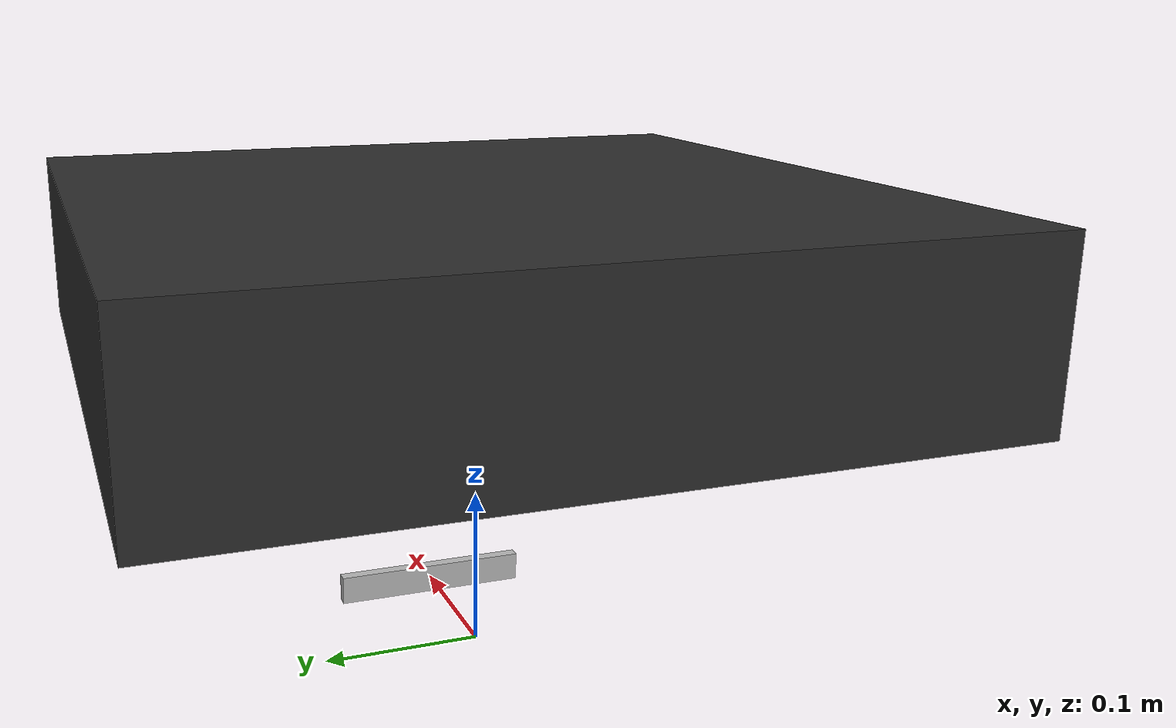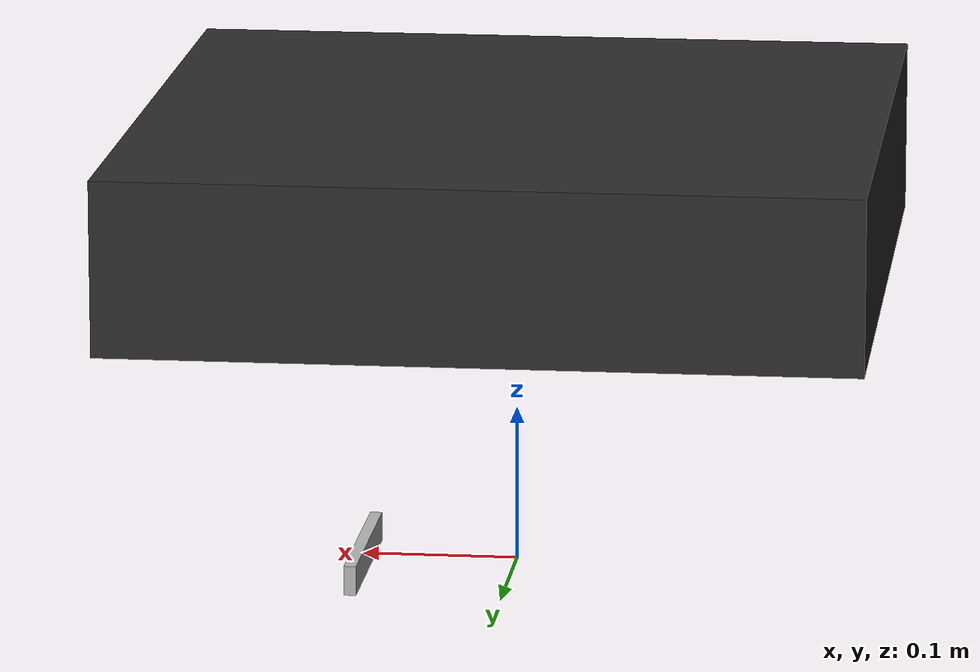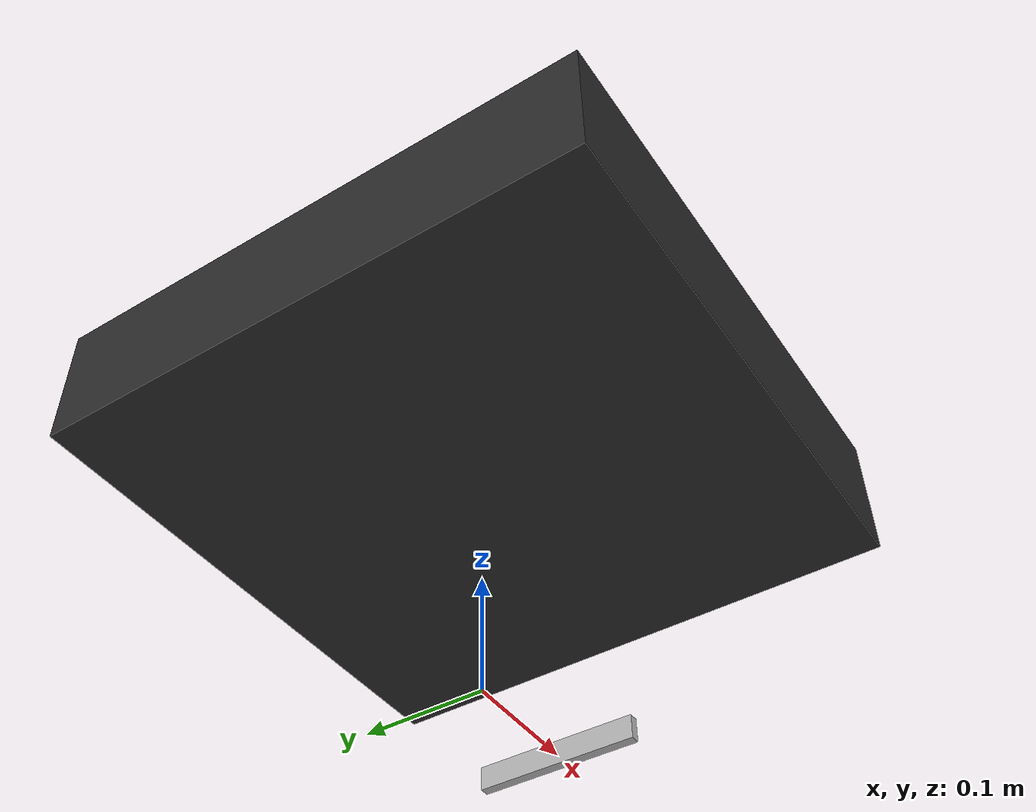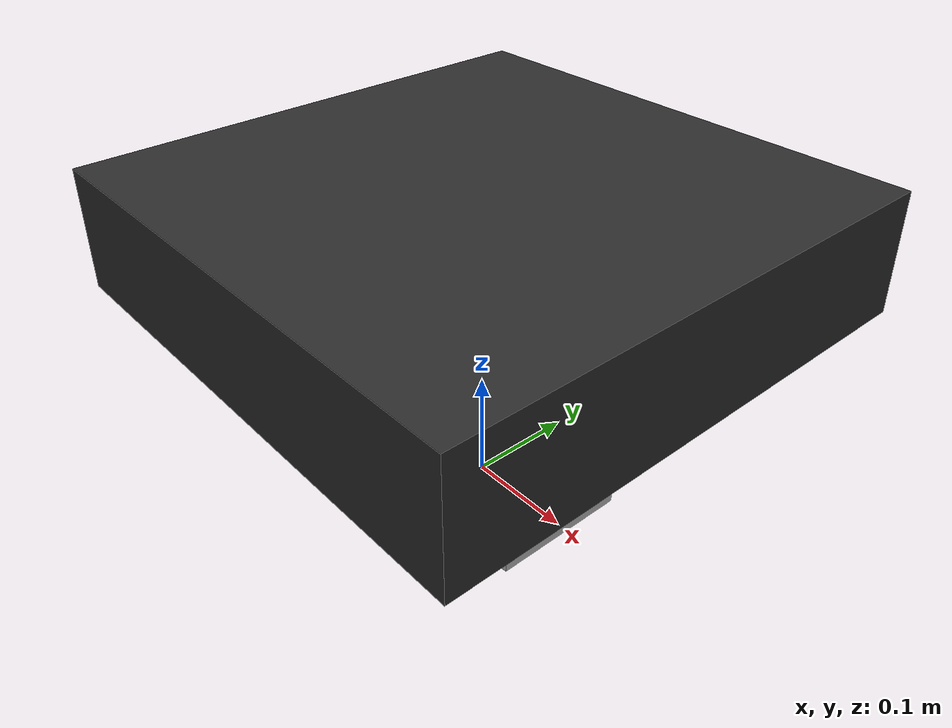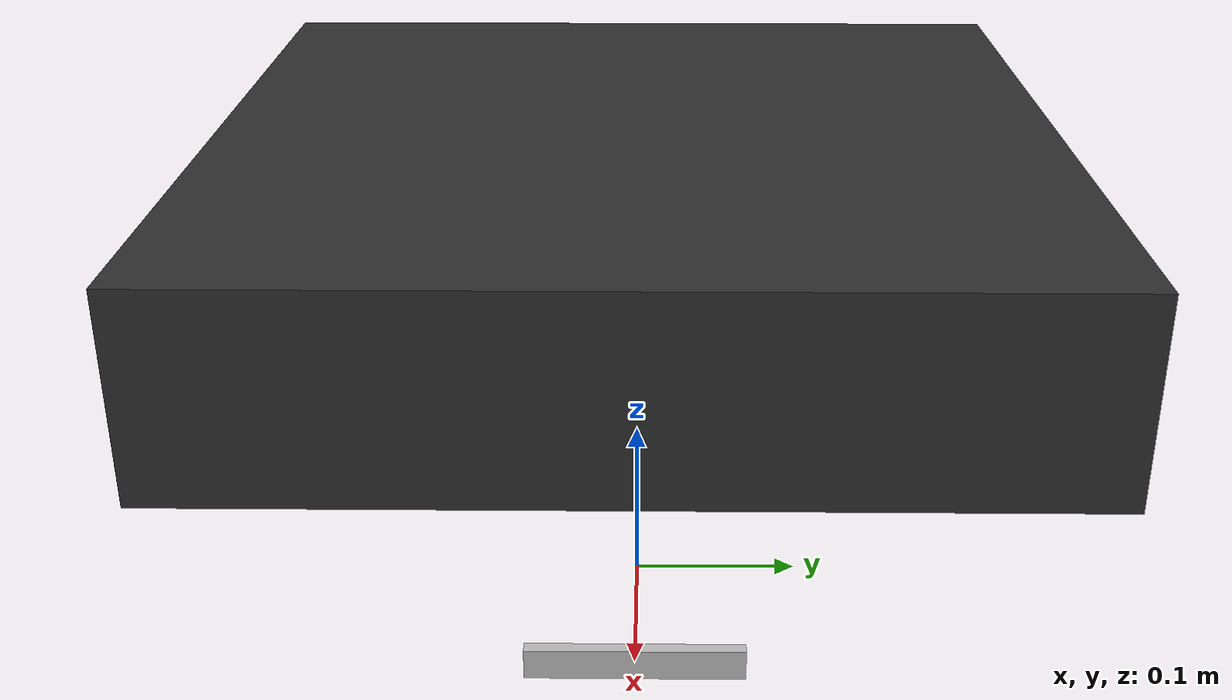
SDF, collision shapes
<?xml version="1.0" ?>
<sdf version="1.5">
  <model name='px4vision_realsense'>
    <include>
      <uri>model://px4vision</uri>
    </include>

    <include>
      <uri>model://realsense_camera</uri>
      <pose>0.1 0 0 0 0 0</pose>
    </include>
    <joint name="camera_joint" type="revolute">
      <child>realsense_camera::link</child>
      <parent>px4vision::base_link</parent>
      <axis>
        <xyz>0 0 1</xyz>
        <limit>
          <upper>0</upper>
          <lower>0</lower>
        </limit>
      </axis>
    </joint>

  </model>
</sdf>

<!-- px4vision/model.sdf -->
<sdf version='1.9'>
  <model name='px4vision'>
    <pose>0 0 .24 0 0 0</pose>
    <self_collide>false</self_collide>
    <static>false</static>
    <link name='base_link'>
      <pose>0 0 0 0 0 0</pose>
      <inertial>
        <pose>0 0 0 0 0 0</pose>
        <mass>1.5</mass>
        <inertia>
          <ixx>0.029125</ixx>
          <ixy>0</ixy>
          <ixz>0</ixz>
          <iyy>0.029125</iyy>
          <iyz>0</iyz>
          <izz>0.055225</izz>
        </inertia>
      </inertial>
      <gravity>1</gravity>
      <velocity_decay/>
      <collision name='base_link_inertia_collision'>
        <pose>0 0 0 0 0 0</pose>
        <geometry>
          <box>
            <size>0.47 0.47 0.11</size>
          </box>
        </geometry>
        <surface>
          <contact>
            <ode>
              <min_depth>0.001</min_depth>
              <max_vel>0</max_vel>
            </ode>
          </contact>
          <friction>
            <ode/>
          </friction>
        </surface>
      </collision>
      <visual name='base_link_inertia_visual'>
        <pose>0 0 0 1.5707 0 0.01</pose>
        <geometry>
          <mesh>
            <scale>0.001 0.001 0.001</scale>
            <uri>model://px4vision/meshes/body.dae</uri>
          </mesh>
        </geometry>
        <material> <!-- DarkGrey-->
          <ambient>0.175 0.175 0.175 1.0</ambient>
          <diffuse>0.175 0.175 0.175 1.0</diffuse>
          <specular>0.175 0.175 0.175 1.0</specular>
        </material>
      </visual>
      <sensor name="air_pressure_sensor" type="air_pressure">
        <always_on>1</always_on>
        <update_rate>50</update_rate>
        <air_pressure>
          <pressure>
            <noise type="gaussian">
              <mean>0</mean>
              <stddev>0.01</stddev>
            </noise>
          </pressure>
        </air_pressure>
      </sensor>
      <sensor name="magnetometer_sensor" type="magnetometer">
        <always_on>1</always_on>
        <update_rate>100</update_rate>
        <magnetometer>
          <!-- TODO: update to fix units and coordinate system when we move past Harmonic -->
          <!-- See https://github.com/gazebosim/gz-sim/pull/2460 -->
          <!-- 3mgauss RMS: NOTE: noise is in tesla but sensor reports data in gauss -->
          <!-- Noise modeled after IIS2MDC -->
          <x>
            <noise type="gaussian">
              <stddev>0.0001</stddev>
            </noise>
          </x>
          <y>
            <noise type="gaussian">
              <stddev>0.0001</stddev>
            </noise>
          </y>
          <z>
            <noise type="gaussian">
              <stddev>0.0001</stddev>
            </noise>
          </z>
        </magnetometer>
      </sensor>
      <sensor name="navsat_sensor" type="navsat">
        <always_on>1</always_on>
        <update_rate>30</update_rate>
      </sensor>
      <sensor name="imu_sensor" type="imu">
        <always_on>1</always_on>
        <update_rate>250</update_rate>
        <imu>
          <angular_velocity>
            <x>
              <noise type="gaussian">
                <mean>0</mean>
                <stddev>0.00018665</stddev>
                <dynamic_bias_stddev>3.8785e-05</dynamic_bias_stddev>
                <dynamic_bias_correlation_time>1000</dynamic_bias_correlation_time>
              </noise>
            </x>
            <y>
              <noise type="gaussian">
                <mean>0</mean>
                <stddev>0.00018665</stddev>
                <dynamic_bias_stddev>3.8785e-05</dynamic_bias_stddev>
                <dynamic_bias_correlation_time>1000</dynamic_bias_correlation_time>
              </noise>
            </y>
            <z>
              <noise type="gaussian">
                <mean>0</mean>
                <stddev>0.00018665</stddev>
                <dynamic_bias_stddev>3.8785e-05</dynamic_bias_stddev>
                <dynamic_bias_correlation_time>1000</dynamic_bias_correlation_time>
              </noise>
            </z>
          </angular_velocity>
          <linear_acceleration>
            <x>
              <noise type="gaussian">
                <mean>0</mean>
                <stddev>0.00186</stddev>
                <dynamic_bias_stddev>0.006</dynamic_bias_stddev>
                <dynamic_bias_correlation_time>300</dynamic_bias_correlation_time>
              </noise>
            </x>
            <y>
              <noise type="gaussian">
                <mean>0</mean>
                <stddev>0.00186</stddev>
                <dynamic_bias_stddev>0.006</dynamic_bias_stddev>
                <dynamic_bias_correlation_time>300</dynamic_bias_correlation_time>
              </noise>
            </y>
            <z>
              <noise type="gaussian">
                <mean>0</mean>
                <stddev>0.00186</stddev>
                <dynamic_bias_stddev>0.006</dynamic_bias_stddev>
                <dynamic_bias_correlation_time>300</dynamic_bias_correlation_time>
              </noise>
            </z>
          </linear_acceleration>
        </imu>
      </sensor>
    </link>
    <link name='rotor_0'>
      <pose>0.0935 -0.107 0.03 0 0 0</pose>
      <inertial>
        <pose>0 0 0 0 0 0</pose>
        <mass>0.005</mass>
        <inertia>
          <ixx>9.75e-07</ixx>
          <iyy>0.000273104</iyy>
          <izz>0.000274004</izz>
        </inertia>
      </inertial>
      <collision name='rotor_0_collision'>
        <pose>0 0 0 0 0 0</pose>
        <geometry>
          <cylinder>
            <length>0.005</length>
            <radius>0.128</radius>
          </cylinder>
        </geometry>
        <surface>
          <contact>
            <ode>
              <min_depth>0.001</min_depth>
              <max_vel>0</max_vel>
            </ode>
          </contact>
          <friction>
            <ode/>
          </friction>
        </surface>
      </collision>
      <visual name='rotor_0_visual'>
        <pose>0 0 0 0 0 0</pose>
        <geometry>
          <mesh>
            <scale>0.6 0.6 0.6</scale>
            <uri>model://px4vision/meshes/iris_prop_ccw.dae</uri>
          </mesh>
        </geometry>
        <material> <!-- Blue -->
          <ambient>0 0 1</ambient>
          <diffuse>0 0 1</diffuse>
          <specular>0.1 0.1 0.1 1</specular>
        </material>
      </visual>
      <gravity>1</gravity>
      <velocity_decay/>
    </link>
    <joint name='rotor_0_joint' type='revolute'>
      <child>rotor_0</child>
      <parent>base_link</parent>
      <axis>
        <xyz>0 0 1</xyz>
        <limit>
          <lower>-1e+16</lower>
          <upper>1e+16</upper>
        </limit>
        <dynamics>
          <spring_reference>0</spring_reference>
          <spring_stiffness>0</spring_stiffness>
        </dynamics>
      </axis>
    </joint>
    <link name='rotor_1'>
      <pose>-0.0935 0.107 0.03 0 0 0</pose>
      <inertial>
        <pose>0 0 0 0 0 0</pose>
        <mass>0.005</mass>
        <inertia>
          <ixx>9.75e-07</ixx>
          <iyy>0.000273104</iyy>
          <izz>0.000274004</izz>
        </inertia>
      </inertial>
      <collision name='rotor_1_collision'>
        <pose>0 0 0 0 0 0</pose>
        <geometry>
          <cylinder>
            <length>0.005</length>
            <radius>0.128</radius>
          </cylinder>
        </geometry>
        <surface>
          <contact>
            <ode>
              <min_depth>0.001</min_depth>
              <max_vel>0</max_vel>
            </ode>
          </contact>
          <friction>
            <ode/>
          </friction>
        </surface>
      </collision>
      <visual name='rotor_1_visual'>
        <pose>0 0 0 0 0 0</pose>
        <geometry>
          <mesh>
            <scale>0.6 0.6 0.6</scale>
            <uri>model://px4vision/meshes/iris_prop_ccw.dae</uri>
          </mesh>
        </geometry>
        <material> <!-- DarkGrey -->
          <ambient>0.175 0.175 0.175 1.0</ambient>
          <diffuse>0.175 0.175 0.175 1.0</diffuse>
          <specular>0.175 0.175 0.175 1.0</specular>
        </material>
      </visual>
      <gravity>1</gravity>
      <velocity_decay/>
    </link>
    <joint name='rotor_1_joint' type='revolute'>
      <child>rotor_1</child>
      <parent>base_link</parent>
      <axis>
        <xyz>0 0 1</xyz>
        <limit>
          <lower>-1e+16</lower>
          <upper>1e+16</upper>
        </limit>
        <dynamics>
          <spring_reference>0</spring_reference>
          <spring_stiffness>0</spring_stiffness>
        </dynamics>
      </axis>
    </joint>
    <link name='rotor_2'>
      <pose>0.0935 0.107 0.03 0 0 0</pose>
      <inertial>
        <pose>0 0 0 0 0 0</pose>
        <mass>0.005</mass>
        <inertia>
          <ixx>9.75e-07</ixx>
          <iyy>0.000273104</iyy>
          <izz>0.000274004</izz>
        </inertia>
      </inertial>
      <collision name='rotor_2_collision'>
        <pose>0 0 0 0 0 0</pose>
        <geometry>
          <cylinder>
            <length>0.005</length>
            <radius>0.128</radius>
          </cylinder>
        </geometry>
        <surface>
          <contact>
            <ode>
              <min_depth>0.001</min_depth>
              <max_vel>0</max_vel>
            </ode>
          </contact>
          <friction>
            <ode/>
          </friction>
        </surface>
      </collision>
      <visual name='rotor_2_visual'>
        <pose>0 0 0 0 0 0</pose>
        <geometry>
          <mesh>
            <scale>0.6 0.6 0.6</scale>
            <uri>model://px4vision/meshes/iris_prop_cw.dae</uri>
          </mesh>
        </geometry>
        <material> <!-- Blue -->
          <ambient>0 0 1</ambient>
          <diffuse>0 0 1</diffuse>
          <specular>0.1 0.1 0.1 1</specular>
        </material>
      </visual>
      <gravity>1</gravity>
      <velocity_decay/>
    </link>
    <joint name='rotor_2_joint' type='revolute'>
      <child>rotor_2</child>
      <parent>base_link</parent>
      <axis>
        <xyz>0 0 1</xyz>
        <limit>
          <lower>-1e+16</lower>
          <upper>1e+16</upper>
        </limit>
        <dynamics>
          <spring_reference>0</spring_reference>
          <spring_stiffness>0</spring_stiffness>
        </dynamics>
      </axis>
    </joint>
    <link name='rotor_3'>
      <pose>-0.0935 -0.107 0.03 0 0 0</pose>
      <inertial>
        <pose>0 0 0 0 0 0</pose>
        <mass>0.005</mass>
        <inertia>
          <ixx>9.75e-07</ixx>
          <iyy>0.000273104</iyy>
          <izz>0.000274004</izz>
        </inertia>
      </inertial>
      <collision name='rotor_3_collision'>
        <pose>0 0 0 0 0 0</pose>
        <geometry>
          <cylinder>
            <length>0.005</length>
            <radius>0.128</radius>
          </cylinder>
        </geometry>
        <surface>
          <contact>
            <ode>
              <min_depth>0.001</min_depth>
              <max_vel>0</max_vel>
            </ode>
          </contact>
          <friction>
            <ode/>
          </friction>
        </surface>
      </collision>
      <visual name='rotor_3_visual'>
        <pose>0 0 0 0 0 0</pose>
        <geometry>
          <mesh>
            <scale>0.6 0.6 0.6</scale>
            <uri>model://px4vision/meshes/iris_prop_cw.dae</uri>
          </mesh>
        </geometry>
        <material> <!-- DarkGrey -->
          <ambient>0.175 0.175 0.175 1.0</ambient>
          <diffuse>0.175 0.175 0.175 1.0</diffuse>
          <specular>0.175 0.175 0.175 1.0</specular>
        </material>
      </visual>
      <gravity>1</gravity>
      <velocity_decay/>
    </link>
    <joint name='rotor_3_joint' type='revolute'>
      <child>rotor_3</child>
      <parent>base_link</parent>
      <axis>
        <xyz>0 0 1</xyz>
        <limit>
          <lower>-1e+16</lower>
          <upper>1e+16</upper>
        </limit>
        <dynamics>
          <spring_reference>0</spring_reference>
          <spring_stiffness>0</spring_stiffness>
        </dynamics>
      </axis>
    </joint>
    <!-- TODO: add GPS plugin -->
   <plugin filename="gz-sim-multicopter-motor-model-system" name="gz::sim::systems::MulticopterMotorModel">
      <jointName>rotor_0_joint</jointName>
      <linkName>rotor_0</linkName>
      <turningDirection>ccw</turningDirection>
      <timeConstantUp>0.0125</timeConstantUp>
      <timeConstantDown>0.025</timeConstantDown>
      <maxRotVelocity>1000</maxRotVelocity>
      <motorConstant>8.54858e-06</motorConstant>
      <momentConstant>0.06</momentConstant>
      <commandSubTopic>command/motor_speed</commandSubTopic>
      <motorNumber>0</motorNumber>
      <rotorDragCoefficient>0.000806428</rotorDragCoefficient>
      <rollingMomentCoefficient>1e-06</rollingMomentCoefficient>
      <rotorVelocitySlowdownSim>10</rotorVelocitySlowdownSim>
      <motorType>velocity</motorType>
    </plugin>
   <plugin filename="gz-sim-multicopter-motor-model-system" name="gz::sim::systems::MulticopterMotorModel">
      <jointName>rotor_1_joint</jointName>
      <linkName>rotor_1</linkName>
      <turningDirection>ccw</turningDirection>
      <timeConstantUp>0.0125</timeConstantUp>
      <timeConstantDown>0.025</timeConstantDown>
      <maxRotVelocity>1000</maxRotVelocity>
      <motorConstant>8.54858e-06</motorConstant>
      <momentConstant>0.06</momentConstant>
      <commandSubTopic>command/motor_speed</commandSubTopic>
      <motorNumber>1</motorNumber>
      <rotorDragCoefficient>0.000806428</rotorDragCoefficient>
      <rollingMomentCoefficient>1e-06</rollingMomentCoefficient>
      <rotorVelocitySlowdownSim>10</rotorVelocitySlowdownSim>
      <motorType>velocity</motorType>
    </plugin>
   <plugin filename="gz-sim-multicopter-motor-model-system" name="gz::sim::systems::MulticopterMotorModel">
      <jointName>rotor_2_joint</jointName>
      <linkName>rotor_2</linkName>
      <turningDirection>cw</turningDirection>
      <timeConstantUp>0.0125</timeConstantUp>
      <timeConstantDown>0.025</timeConstantDown>
      <maxRotVelocity>1000</maxRotVelocity>
      <motorConstant>8.54858e-06</motorConstant>
      <momentConstant>0.06</momentConstant>
      <commandSubTopic>command/motor_speed</commandSubTopic>
      <motorNumber>2</motorNumber>
      <rotorDragCoefficient>0.000806428</rotorDragCoefficient>
      <rollingMomentCoefficient>1e-06</rollingMomentCoefficient>
      <rotorVelocitySlowdownSim>10</rotorVelocitySlowdownSim>
      <motorType>velocity</motorType>
    </plugin>
   <plugin filename="gz-sim-multicopter-motor-model-system" name="gz::sim::systems::MulticopterMotorModel">
      <jointName>rotor_3_joint</jointName>
      <linkName>rotor_3</linkName>
      <turningDirection>cw</turningDirection>
      <timeConstantUp>0.0125</timeConstantUp>
      <timeConstantDown>0.025</timeConstantDown>
      <maxRotVelocity>1000</maxRotVelocity>
      <motorConstant>8.54858e-06</motorConstant>
      <momentConstant>0.06</momentConstant>
      <commandSubTopic>command/motor_speed</commandSubTopic>
      <motorNumber>3</motorNumber>
      <rotorDragCoefficient>0.000806428</rotorDragCoefficient>
      <rollingMomentCoefficient>1e-06</rollingMomentCoefficient>
      <rotorVelocitySlowdownSim>10</rotorVelocitySlowdownSim>
      <motorType>velocity</motorType>
    </plugin>
  </model>
</sdf>

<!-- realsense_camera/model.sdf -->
<sdf version="1.6">
  <model name="realsense_camera">
    <plugin name="realsense_plugin" filename="libRealSensePlugin.so"/>
    <pose>0 0 0.015 0 0 0</pose>
    <link name="link">
      <inertial>
        <mass>0.0615752</mass>
        <inertia>
          <ixx>9.108e-05</ixx>
          <ixy>0</ixy>
          <ixz>0</ixz>
          <iyy>2.51e-06</iyy>
          <iyz>0</iyz>
          <izz>8.931e-05</izz>
        </inertia>
        <pose>0 0 0 0 -0 0</pose>
      </inertial>
      <self_collide>0</self_collide>
      <kinematic>0</kinematic>
      <gravity>1</gravity>
      <visual name="visual">
        <geometry>
          <mesh>
            <uri>model://realsense_camera/meshes/realsense.dae</uri>
          </mesh>
        </geometry>
      </visual>
      <collision name='collision'>
        <laser_retro>0</laser_retro>
        <max_contacts>10</max_contacts>
        <pose>0 0 0 0 -0 0</pose>
        <geometry>
          <box>
            <size>0.0078 0.130 0.0192</size>
          </box>
        </geometry>
        <surface>
          <friction>
            <ode>
              <mu>1</mu>
              <mu2>1</mu2>
              <fdir1>0 0 0</fdir1>
              <slip1>0</slip1>
              <slip2>0</slip2>
            </ode>
          </friction>
          <bounce>
            <restitution_coefficient>0</restitution_coefficient>
            <threshold>1e+06</threshold>
          </bounce>
          <contact>
            <collide_without_contact>0</collide_without_contact>
            <collide_without_contact_bitmask>1</collide_without_contact_bitmask>
            <collide_bitmask>1</collide_bitmask>
            <ode>
              <soft_cfm>0</soft_cfm>
              <soft_erp>0.2</soft_erp>
              <kp>1e+13</kp>
              <kd>1</kd>
              <max_vel>0.01</max_vel>
              <min_depth>0</min_depth>
            </ode>
            <bullet>
              <split_impulse>1</split_impulse>
              <split_impulse_penetration_threshold>-0.01</split_impulse_penetration_threshold>
              <soft_cfm>0</soft_cfm>
              <soft_erp>0.2</soft_erp>
              <kp>1e+13</kp>
              <kd>1</kd>
            </bullet>
          </contact>
        </surface>
      </collision>
      <sensor name="color" type="camera">
        <pose>0 -0.046 0.004 0 0 0</pose>
        <camera name="__default__">
          <horizontal_fov>1.047</horizontal_fov>
          <image>
            <width>640</width>
            <height>480</height>
            <format>RGB_INT8</format>
          </image>
          <clip>
            <near>0.1</near>
            <far>100</far>
          </clip>
          <noise>
            <type>gaussian</type>
            <mean>0.0</mean>
            <stddev>0.007</stddev>
          </noise>
        </camera>
        <always_on>1</always_on>
        <update_rate>60</update_rate>
        <visualize>1</visualize>
      </sensor>
      <sensor name="ired1" type="camera">
        <pose>0 -0.06 0.004 0 0 0</pose>
        <camera name="__default__">
          <horizontal_fov>1.047</horizontal_fov>
          <image>
            <width>640</width>
            <height>480</height>
            <format>L_INT8</format>
          </image>
          <clip>
            <near>0.1</near>
            <far>100</far>
          </clip>
          <noise>
            <type>gaussian</type>
            <mean>0.0</mean>
            <stddev>0.007</stddev>
          </noise>
        </camera>
        <always_on>1</always_on>
        <update_rate>60</update_rate>
        <visualize>0</visualize>
      </sensor>
      <sensor name="ired2" type="camera">
        <pose>0 0.01 0.004 0 0 0</pose>
        <camera name="__default__">
          <horizontal_fov>1.047</horizontal_fov>
          <image>
            <width>640</width>
            <height>480</height>
            <format>L_INT8</format>
          </image>
          <clip>
            <near>0.1</near>
            <far>100</far>
          </clip>
          <noise>
            <type>gaussian</type>
            <mean>0.0</mean>
            <stddev>0.007</stddev>
          </noise>
        </camera>
        <always_on>1</always_on>
        <update_rate>60</update_rate>
        <visualize>0</visualize>
      </sensor>
      <sensor name="depth" type="depth">
        <pose>0 -0.03 0.004 0 0 0</pose>
        <camera name="__default__">
          <horizontal_fov>1.047</horizontal_fov>
          <image>
            <width>640</width>
            <height>480</height>
          </image>
          <clip>
            <near>0.1</near>
            <far>100</far>
          </clip>
          <noise>
            <type>gaussian</type>
            <mean>0.0</mean>
            <stddev>0.007</stddev>
          </noise>
        </camera>
        <always_on>1</always_on>
        <update_rate>60</update_rate>
        <visualize>0</visualize>
        <plugin filename="libgazebo_ros_openni_kinect.so" name="camera_controller">
	   <cameraName>depth_cam</cameraName>
           <alwaysOn>true</alwaysOn>
           <updateRate>20</updateRate>
           <pointCloudCutoff>0.2</pointCloudCutoff>
           <pointCloudCutoffMax>20</pointCloudCutoffMax>
           <imageTopicName>rgb/image_raw</imageTopicName>
           <cameraInfoTopicName>rgb/camera_info</cameraInfoTopicName>
           <depthImageTopicName>depth/image_raw</depthImageTopicName>
           <depthImageCameraInfoTopicName>depth/camera_info</depthImageCameraInfoTopicName>
           <pointCloudTopicName>depth/points</pointCloudTopicName>
           <frameName>cam_link</frameName>
           <distortion_k1>0.0</distortion_k1>
           <distortion_k2>0.0</distortion_k2>
           <distortion_k3>0.0</distortion_k3>
           <distortion_t1>0.0</distortion_t1>
           <distortion_t2>0.0</distortion_t2>
    	</plugin>
      </sensor>
    </link>
  </model>
</sdf>
